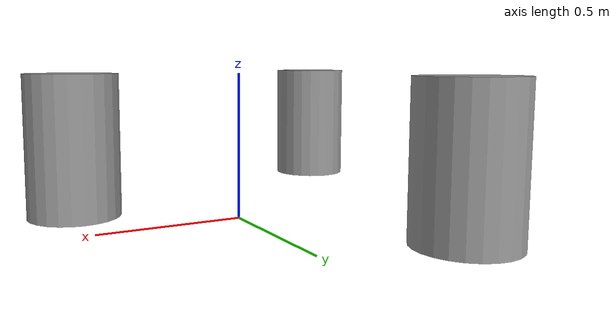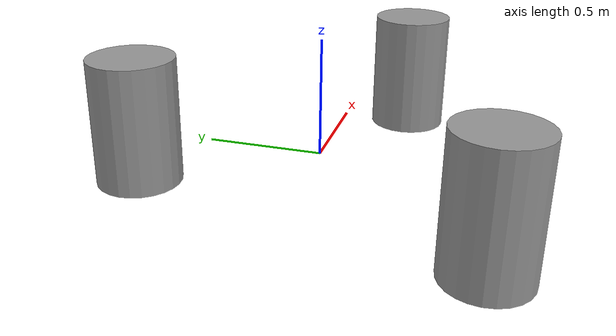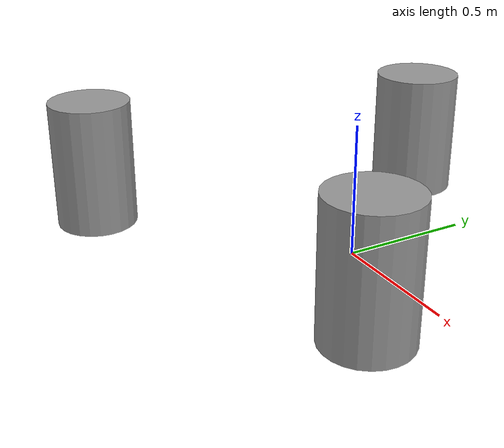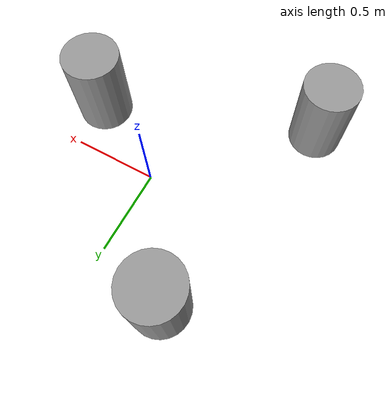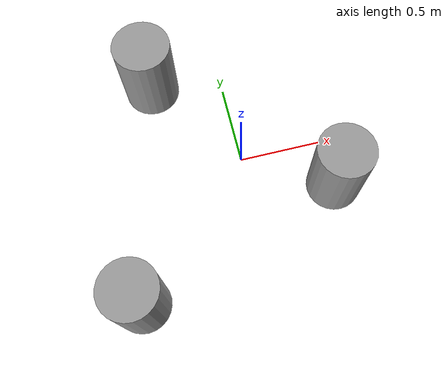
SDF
<?xml version='1.0'?>
<sdf version='1.6'>
  <model name='tunnel_occ_waffle'>
    <link name='link_0_clone_clone'>
      <pose frame=''>0.501945 -0.291243 0.25 0 -0 0</pose>
      <inertial>
        <mass>0.0646813</mass>
        <inertia>
          <ixx>0.00172467</ixx>
          <ixy>0</ixy>
          <ixz>0</ixz>
          <iyy>0.00172467</iyy>
          <iyz>0</iyz>
          <izz>0.00112662</izz>
        </inertia>
        <pose frame=''>0 0 0 0 -0 0</pose>
      </inertial>
      <self_collide>0</self_collide>
      <kinematic>0</kinematic>
      <visual name='visual'>
        <pose frame=''>0 0 0 0 -0 0</pose>
        <geometry>
          <cylinder>
            <radius>0.161971</radius>
            <length>0.5</length>
          </cylinder>
        </geometry>
        <material>
          <lighting>1</lighting>
          <script>
            <uri>file://media/materials/scripts/gazebo.material</uri>
            <name>Gazebo/Grey</name>
          </script>
          <ambient>0.3 0.3 0.3 1</ambient>
          <diffuse>0.7 0.7 0.7 1</diffuse>
          <specular>0.01 0.01 0.01 1</specular>
          <emissive>0 0 0 1</emissive>
          <shader type='pixel'>
            <normal_map>__default__</normal_map>
          </shader>
        </material>
        <cast_shadows>1</cast_shadows>
        <transparency>0</transparency>
      </visual>
      <collision name='collision'>
        <laser_retro>0</laser_retro>
        <max_contacts>10</max_contacts>
        <pose frame=''>0 0 0 0 -0 0</pose>
        <geometry>
          <cylinder>
            <radius>0.186645</radius>
            <length>0.46418</length>
          </cylinder>
        </geometry>
        <surface>
          <friction>
            <ode>
              <mu>1</mu>
              <mu2>1</mu2>
              <fdir1>0 0 0</fdir1>
              <slip1>0</slip1>
              <slip2>0</slip2>
            </ode>
            <torsional>
              <coefficient>1</coefficient>
              <patch_radius>0</patch_radius>
              <surface_radius>0</surface_radius>
              <use_patch_radius>1</use_patch_radius>
              <ode>
                <slip>0</slip>
              </ode>
            </torsional>
          </friction>
          <bounce>
            <restitution_coefficient>0</restitution_coefficient>
            <threshold>1e+06</threshold>
          </bounce>
          <contact>
            <collide_without_contact>0</collide_without_contact>
            <collide_without_contact_bitmask>1</collide_without_contact_bitmask>
            <collide_bitmask>1</collide_bitmask>
            <ode>
              <soft_cfm>0</soft_cfm>
              <soft_erp>0.2</soft_erp>
              <kp>1e+13</kp>
              <kd>1</kd>
              <max_vel>0.01</max_vel>
              <min_depth>0</min_depth>
            </ode>
            <bullet>
              <split_impulse>1</split_impulse>
              <split_impulse_penetration_threshold>-0.01</split_impulse_penetration_threshold>
              <soft_cfm>0</soft_cfm>
              <soft_erp>0.2</soft_erp>
              <kp>1e+13</kp>
              <kd>1</kd>
            </bullet>
          </contact>
        </surface>
      </collision>
    </link>
    <link name='link_0_clone_clone_clone'>
      <pose frame=''>-0.740951 -0.728437 0.25 0 -0 0</pose>
      <inertial>
        <mass>0.0610077</mass>
        <inertia>
          <ixx>0.00159654</ixx>
          <ixy>0</ixy>
          <ixz>0</ixz>
          <iyy>0.00159654</iyy>
          <iyz>0</iyz>
          <izz>0.00100228</izz>
        </inertia>
        <pose frame=''>0 0 0 0 -0 0</pose>
      </inertial>
      <self_collide>0</self_collide>
      <kinematic>0</kinematic>
      <visual name='visual'>
        <pose frame=''>0 0 0 0 -0 0</pose>
        <geometry>
          <cylinder>
            <radius>0.157305</radius>
            <length>0.5</length>
          </cylinder>
        </geometry>
        <material>
          <lighting>1</lighting>
          <script>
            <uri>file://media/materials/scripts/gazebo.material</uri>
            <name>Gazebo/Grey</name>
          </script>
          <ambient>0.3 0.3 0.3 1</ambient>
          <diffuse>0.7 0.7 0.7 1</diffuse>
          <specular>0.01 0.01 0.01 1</specular>
          <emissive>0 0 0 1</emissive>
          <shader type='pixel'>
            <normal_map>__default__</normal_map>
          </shader>
        </material>
        <cast_shadows>1</cast_shadows>
        <transparency>0</transparency>
      </visual>
      <collision name='collision'>
        <laser_retro>0</laser_retro>
        <max_contacts>10</max_contacts>
        <pose frame=''>0 0 0 0 -0 0</pose>
        <geometry>
          <cylinder>
            <radius>0.181268</radius>
            <length>0.46418</length>
          </cylinder>
        </geometry>
        <surface>
          <friction>
            <ode>
              <mu>1</mu>
              <mu2>1</mu2>
              <fdir1>0 0 0</fdir1>
              <slip1>0</slip1>
              <slip2>0</slip2>
            </ode>
            <torsional>
              <coefficient>1</coefficient>
              <patch_radius>0</patch_radius>
              <surface_radius>0</surface_radius>
              <use_patch_radius>1</use_patch_radius>
              <ode>
                <slip>0</slip>
              </ode>
            </torsional>
          </friction>
          <bounce>
            <restitution_coefficient>0</restitution_coefficient>
            <threshold>1e+06</threshold>
          </bounce>
          <contact>
            <collide_without_contact>0</collide_without_contact>
            <collide_without_contact_bitmask>1</collide_without_contact_bitmask>
            <collide_bitmask>1</collide_bitmask>
            <ode>
              <soft_cfm>0</soft_cfm>
              <soft_erp>0.2</soft_erp>
              <kp>1e+13</kp>
              <kd>1</kd>
              <max_vel>0.01</max_vel>
              <min_depth>0</min_depth>
            </ode>
            <bullet>
              <split_impulse>1</split_impulse>
              <split_impulse_penetration_threshold>-0.01</split_impulse_penetration_threshold>
              <soft_cfm>0</soft_cfm>
              <soft_erp>0.2</soft_erp>
              <kp>1e+13</kp>
              <kd>1</kd>
            </bullet>
          </contact>
        </surface>
      </collision>
    </link>
    <link name='link_0_clone_clone_clone_clone'>
      <pose frame=''>-0.441394 0.616496 0.25 0 -0 0</pose>
      <inertial>
        <mass>0.0702867</mass>
        <inertia>
          <ixx>0.00192718</ixx>
          <ixy>0</ixy>
          <ixz>0</ixz>
          <iyy>0.00192718</iyy>
          <iyz>0</iyz>
          <izz>0.00133035</izz>
        </inertia>
        <pose frame=''>0 0 0 0 -0 0</pose>
      </inertial>
      <self_collide>0</self_collide>
      <kinematic>0</kinematic>
      <visual name='visual'>
        <pose frame=''>0 0 0 0 -0 0</pose>
        <geometry>
          <cylinder>
            <radius>0.168844</radius>
            <length>0.5</length>
          </cylinder>
        </geometry>
        <material>
          <lighting>1</lighting>
          <script>
            <uri>file://media/materials/scripts/gazebo.material</uri>
            <name>Gazebo/Grey</name>
          </script>
          <ambient>0.3 0.3 0.3 1</ambient>
          <diffuse>0.7 0.7 0.7 1</diffuse>
          <specular>0.01 0.01 0.01 1</specular>
          <emissive>0 0 0 1</emissive>
          <shader type='pixel'>
            <normal_map>__default__</normal_map>
          </shader>
        </material>
        <cast_shadows>1</cast_shadows>
        <transparency>0</transparency>
      </visual>
      <collision name='collision'>
        <laser_retro>0</laser_retro>
        <max_contacts>10</max_contacts>
        <pose frame=''>0 0 0 0 -0 0</pose>
        <geometry>
          <cylinder>
            <radius>0.194565</radius>
            <length>0.46418</length>
          </cylinder>
        </geometry>
        <surface>
          <friction>
            <ode>
              <mu>1</mu>
              <mu2>1</mu2>
              <fdir1>0 0 0</fdir1>
              <slip1>0</slip1>
              <slip2>0</slip2>
            </ode>
            <torsional>
              <coefficient>1</coefficient>
              <patch_radius>0</patch_radius>
              <surface_radius>0</surface_radius>
              <use_patch_radius>1</use_patch_radius>
              <ode>
                <slip>0</slip>
              </ode>
            </torsional>
          </friction>
          <bounce>
            <restitution_coefficient>0</restitution_coefficient>
            <threshold>1e+06</threshold>
          </bounce>
          <contact>
            <collide_without_contact>0</collide_without_contact>
            <collide_without_contact_bitmask>1</collide_without_contact_bitmask>
            <collide_bitmask>1</collide_bitmask>
            <ode>
              <soft_cfm>0</soft_cfm>
              <soft_erp>0.2</soft_erp>
              <kp>1e+13</kp>
              <kd>1</kd>
              <max_vel>0.01</max_vel>
              <min_depth>0</min_depth>
            </ode>
            <bullet>
              <split_impulse>1</split_impulse>
              <split_impulse_penetration_threshold>-0.01</split_impulse_penetration_threshold>
              <soft_cfm>0</soft_cfm>
              <soft_erp>0.2</soft_erp>
              <kp>1e+13</kp>
              <kd>1</kd>
            </bullet>
          </contact>
        </surface>
      </collision>
    </link>
    <static>1</static>
    <allow_auto_disable>1</allow_auto_disable>
  </model>
</sdf>
